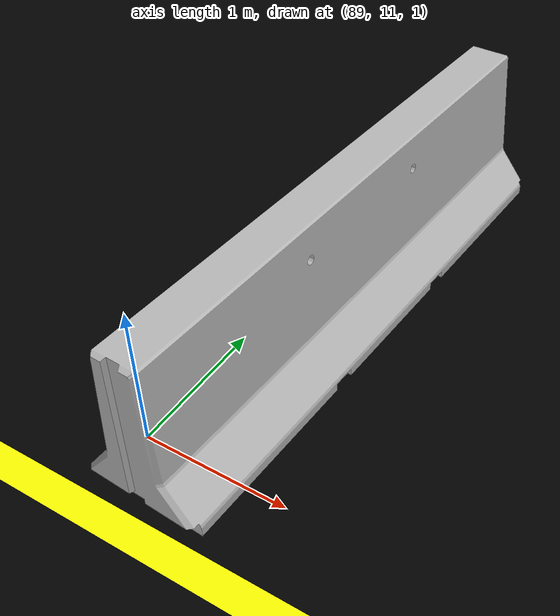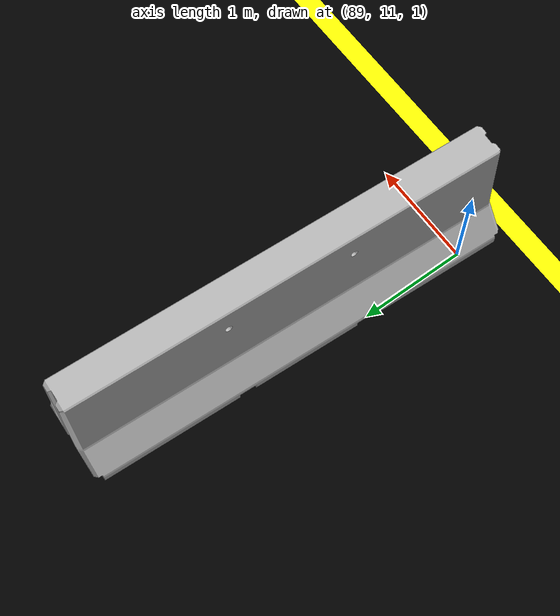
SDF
<sdf version="1.6">
 <world name="default">
  <light name="sun" type="directional">
   <pose>0 0 10 0 -0 0</pose>
   <diffuse>0.8 0.8 0.8 1</diffuse>
   <specular>0.2 0.2 0.2 1</specular>
   <attenuation>
    <range>1000</range>
    <constant>0.9</constant>
    <linear>0.01</linear>
    <quadratic>0.001</quadratic>
   </attenuation>
   <direction>-0.5 0.1 -0.9</direction>
  </light>
  <model name="LineTrack">
   <pose>0 0 1 0 -0 0</pose>
   <static>1</static>
   <link name="link">
    <inertial><mass>1000</mass></inertial>
    <collision name="collision">
     <geometry><mesh><uri>model://LineTrack/PISTA4.dae</uri></mesh></geometry>
    </collision>
    <visual name="visual"><geometry><mesh><uri>model://LineTrack/PISTA4.dae</uri></mesh></geometry></visual>
   </link>
  </model>
  <gravity>0 0 -9.8</gravity>
  <magnetic_field>6e-06 2.3e-05 -4.2e-05</magnetic_field>
  <atmosphere type="adiabatic"/>
  <physics name="default_physics" default="0" type="ode">
   <max_step_size>0.001</max_step_size>
   <real_time_factor>1</real_time_factor>
   <real_time_update_rate>1000</real_time_update_rate>
  </physics>
  <scene><ambient>0.4 0.4 0.4 1</ambient><background>0.7 0.7 0.7 1</background><shadows>1</shadows></scene>
  <spherical_coordinates>
   <surface_model>EARTH_WGS84</surface_model>
   <latitude_deg>0</latitude_deg>
   <longitude_deg>0</longitude_deg>
   <elevation>0</elevation>
   <heading_deg>0</heading_deg>
  </spherical_coordinates>
  <model name="jersey_barrier">
   <static>1</static>
   <link name="link">
    <visual name="visual">
     <geometry><mesh><uri>model://jersey_barrier/meshes/jersey_barrier.dae</uri></mesh></geometry>
    </visual>
    <collision name="upright">
     <pose>0 0 0.5715 0 -0 0</pose>
     <geometry><box><size>4.06542 0.3063 1.143</size></box></geometry>
    </collision>
    <collision name="base">
     <pose>0 0 0.032258 0 -0 0</pose>
     <geometry><box><size>4.06542 0.8107 0.064516</size></box></geometry>
    </collision>
    <collision name="base2">
     <pose>0 0 0.1 0 -0 0</pose>
     <geometry><box><size>4.06542 0.65 0.1</size></box></geometry>
    </collision>
    <collision name="base3">
     <pose>0 0 0.2 0 -0 0</pose>
     <geometry><box><size>4.06542 0.5 0.1</size></box></geometry>
    </collision>
    <collision name="left-angle">
     <pose>0 -0.224 0.2401 0.9 -0 0</pose>
     <geometry><box><size>4.06542 0.5 0.064516</size></box></geometry>
    </collision>
    <collision name="right-angle">
     <pose>0 0.224 0.2401 -0.9 0 0</pose>
     <geometry><box><size>4.06542 0.5 0.064516</size></box></geometry>
    </collision>
   </link>
   <pose>89.418 12.6027 1.00472 0 -0 1.51417</pose>
  </model>
 </world>
</sdf>
